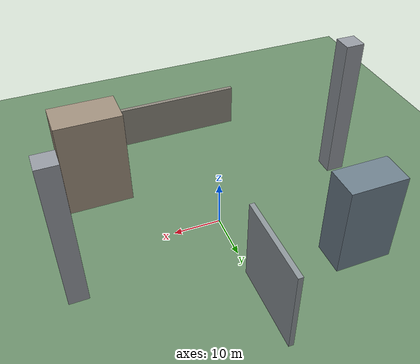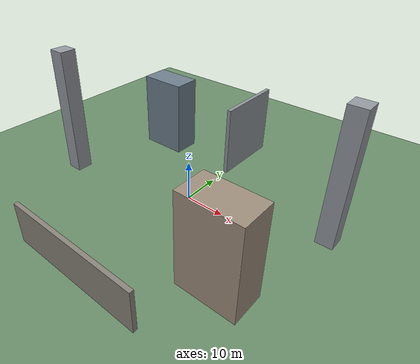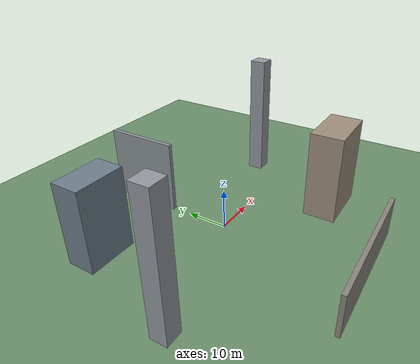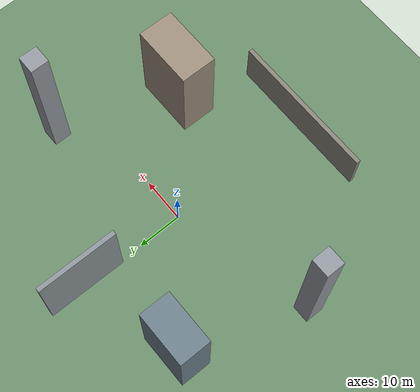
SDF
<?xml version="1.0" encoding="UTF-8"?>
<sdf version="1.9">
  <world name="ucs_obstacle_field">
    <physics type="ode">
      <max_step_size>0.004</max_step_size>
      <real_time_factor>1.0</real_time_factor>
      <real_time_update_rate>250</real_time_update_rate>
    </physics>
    <gravity>0 0 -9.8</gravity>
    <magnetic_field>6e-06 2.3e-05 -4.2e-05</magnetic_field>
    <atmosphere type="adiabatic"/>
    <scene>
      <grid>false</grid>
      <ambient>0.45 0.48 0.52 1</ambient>
      <background>0.68 0.74 0.80 1</background>
      <shadows>true</shadows>
    </scene>

    <model name="ground_plane">
      <static>true</static>
      <link name="link">
        <collision name="collision">
          <geometry>
            <plane>
              <normal>0 0 1</normal>
              <size>1 1</size>
            </plane>
          </geometry>
        </collision>
        <visual name="visual">
          <geometry>
            <plane>
              <normal>0 0 1</normal>
              <size>160 120</size>
            </plane>
          </geometry>
          <material>
            <ambient>0.42 0.48 0.40 1</ambient>
            <diffuse>0.42 0.56 0.42 1</diffuse>
            <specular>0.20 0.22 0.18 1</specular>
          </material>
        </visual>
      </link>
    </model>

    <light name="sunUTC" type="directional">
      <pose>0 0 500 0 0 0</pose>
      <cast_shadows>true</cast_shadows>
      <intensity>1</intensity>
      <direction>0.25 0.55 -0.79</direction>
      <diffuse>0.92 0.90 0.86 1</diffuse>
      <specular>0.25 0.25 0.24 1</specular>
      <attenuation>
        <range>2000</range>
        <linear>0</linear>
        <constant>1</constant>
        <quadratic>0</quadratic>
      </attenuation>
    </light>

    <model name="north_relay_wall">
      <static>true</static>
      <pose>0 24 9 0 0 0</pose>
      <link name="link">
        <collision name="collision">
          <geometry>
            <box>
              <size>1.0 18 18</size>
            </box>
          </geometry>
        </collision>
        <visual name="visual">
          <geometry>
            <box>
              <size>1.0 18 18</size>
            </box>
          </geometry>
          <material>
            <ambient>0.32 0.34 0.36 1</ambient>
            <diffuse>0.55 0.58 0.60 1</diffuse>
            <specular>0.18 0.18 0.16 1</specular>
          </material>
        </visual>
      </link>
    </model>

    <model name="north_service_block">
      <static>true</static>
      <pose>-22 18 10 0 0 0</pose>
      <link name="link">
        <collision name="collision">
          <geometry>
            <box>
              <size>12 7 20</size>
            </box>
          </geometry>
        </collision>
        <visual name="visual">
          <geometry>
            <box>
              <size>12 7 20</size>
            </box>
          </geometry>
          <material>
            <ambient>0.26 0.31 0.34 1</ambient>
            <diffuse>0.43 0.50 0.55 1</diffuse>
            <specular>0.12 0.13 0.14 1</specular>
          </material>
        </visual>
      </link>
    </model>

    <model name="south_hangar">
      <static>true</static>
      <pose>22 -18 11 0 0 0</pose>
      <link name="link">
        <collision name="collision">
          <geometry>
            <box>
              <size>14 8 22</size>
            </box>
          </geometry>
        </collision>
        <visual name="visual">
          <geometry>
            <box>
              <size>14 8 22</size>
            </box>
          </geometry>
          <material>
            <ambient>0.40 0.36 0.32 1</ambient>
            <diffuse>0.62 0.56 0.49 1</diffuse>
            <specular>0.14 0.12 0.10 1</specular>
          </material>
        </visual>
      </link>
    </model>

    <model name="east_tower">
      <static>true</static>
      <pose>32 8 16 0 0 0</pose>
      <link name="link">
        <collision name="collision">
          <geometry>
            <box>
              <size>4 4 32</size>
            </box>
          </geometry>
        </collision>
        <visual name="visual">
          <geometry>
            <box>
              <size>4 4 32</size>
            </box>
          </geometry>
          <material>
            <ambient>0.36 0.37 0.39 1</ambient>
            <diffuse>0.58 0.60 0.63 1</diffuse>
            <specular>0.22 0.23 0.25 1</specular>
          </material>
        </visual>
      </link>
    </model>

    <model name="west_tower">
      <static>true</static>
      <pose>-32 -8 16 0 0 0</pose>
      <link name="link">
        <collision name="collision">
          <geometry>
            <box>
              <size>4 4 32</size>
            </box>
          </geometry>
        </collision>
        <visual name="visual">
          <geometry>
            <box>
              <size>4 4 32</size>
            </box>
          </geometry>
          <material>
            <ambient>0.36 0.37 0.39 1</ambient>
            <diffuse>0.58 0.60 0.63 1</diffuse>
            <specular>0.22 0.23 0.25 1</specular>
          </material>
        </visual>
      </link>
    </model>

    <model name="low_service_wall">
      <static>true</static>
      <pose>0 -34 5 0 0 0</pose>
      <link name="link">
        <collision name="collision">
          <geometry>
            <box>
              <size>34 1.0 10</size>
            </box>
          </geometry>
        </collision>
        <visual name="visual">
          <geometry>
            <box>
              <size>34 1.0 10</size>
            </box>
          </geometry>
          <material>
            <ambient>0.34 0.33 0.31 1</ambient>
            <diffuse>0.54 0.52 0.48 1</diffuse>
            <specular>0.12 0.11 0.10 1</specular>
          </material>
        </visual>
      </link>
    </model>

    <spherical_coordinates>
      <surface_model>EARTH_WGS84</surface_model>
      <world_frame_orientation>ENU</world_frame_orientation>
      <latitude_deg>47.397971057728974</latitude_deg>
      <longitude_deg>8.546163739800146</longitude_deg>
      <elevation>0</elevation>
    </spherical_coordinates>
  </world>
</sdf>
